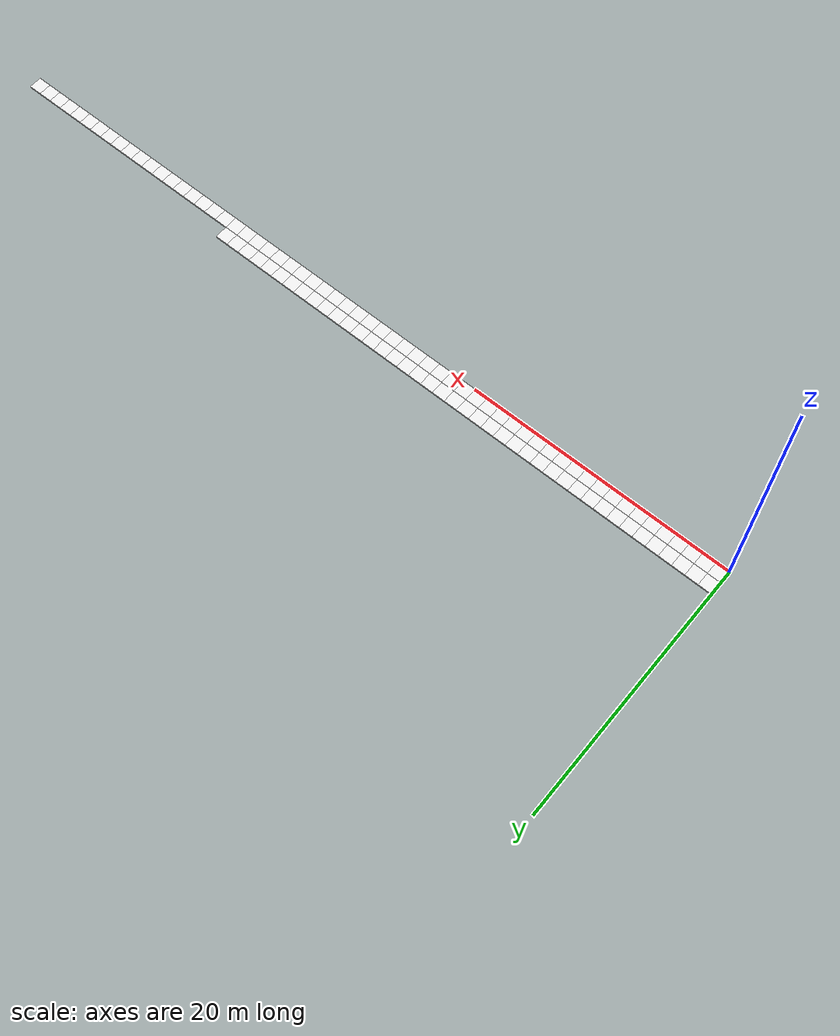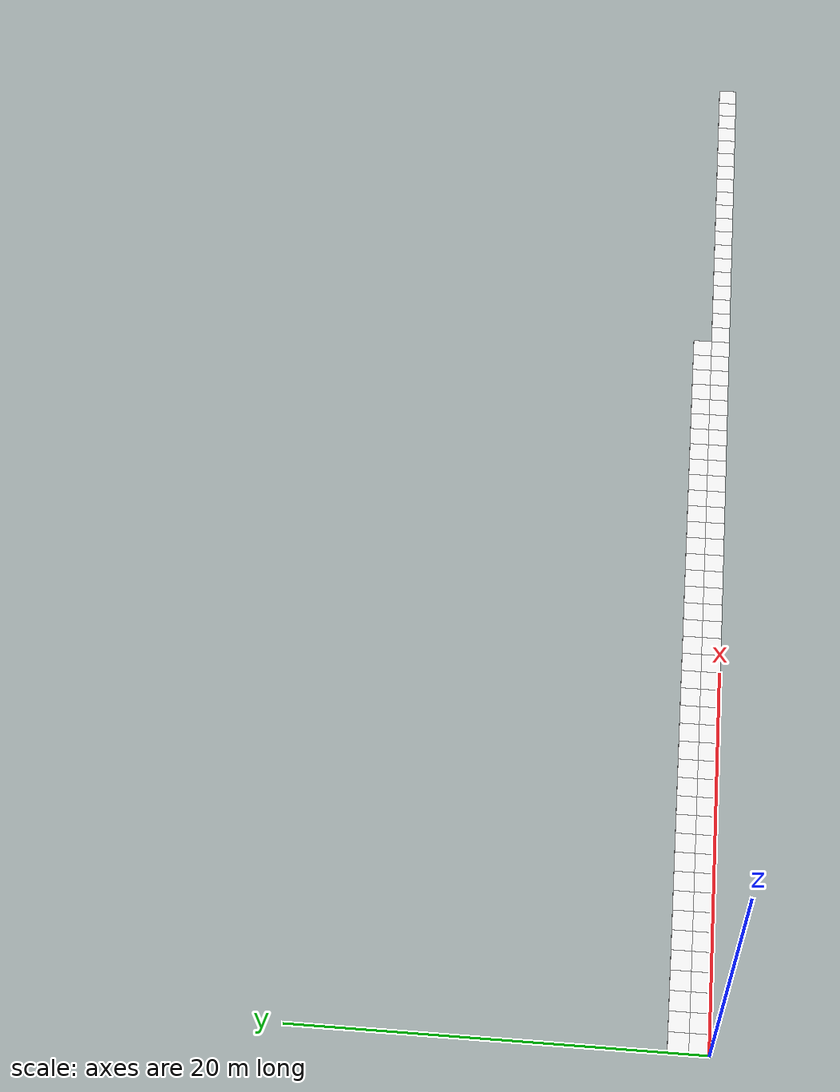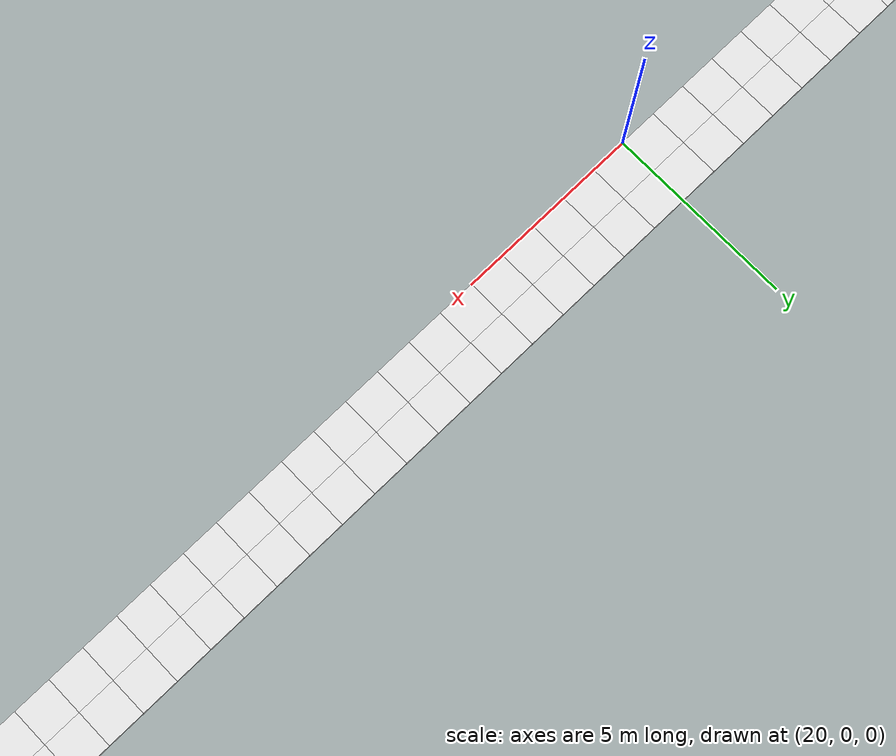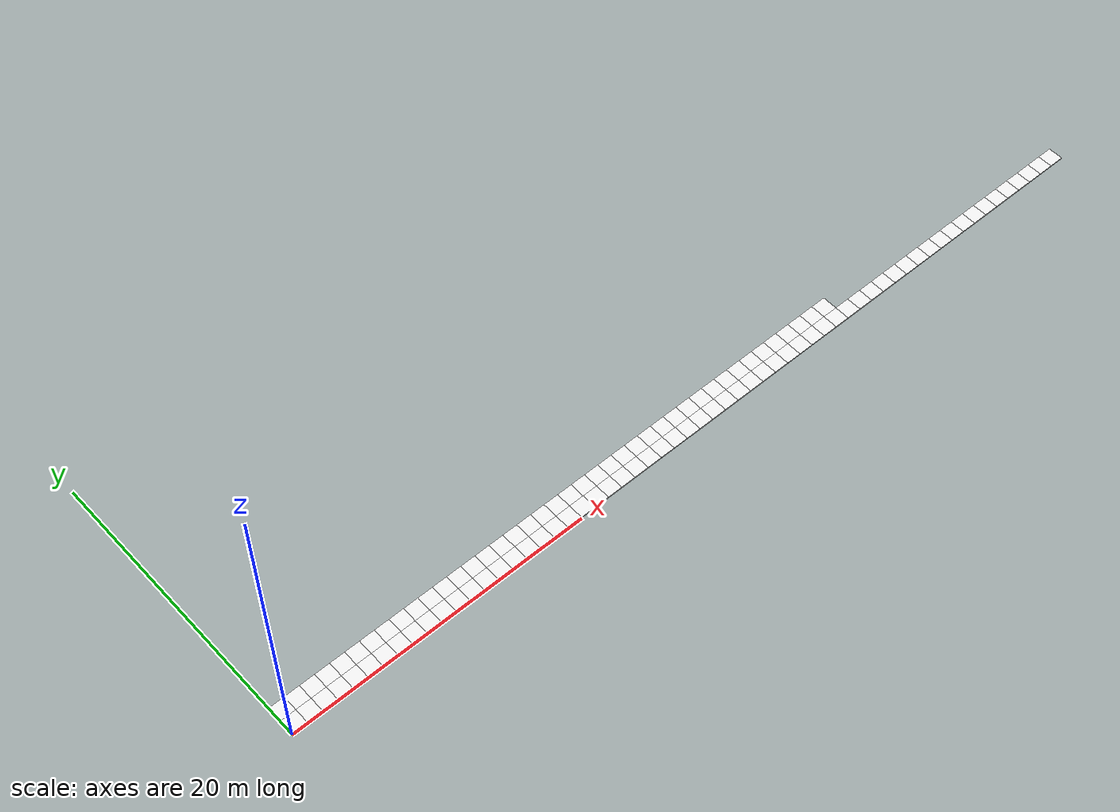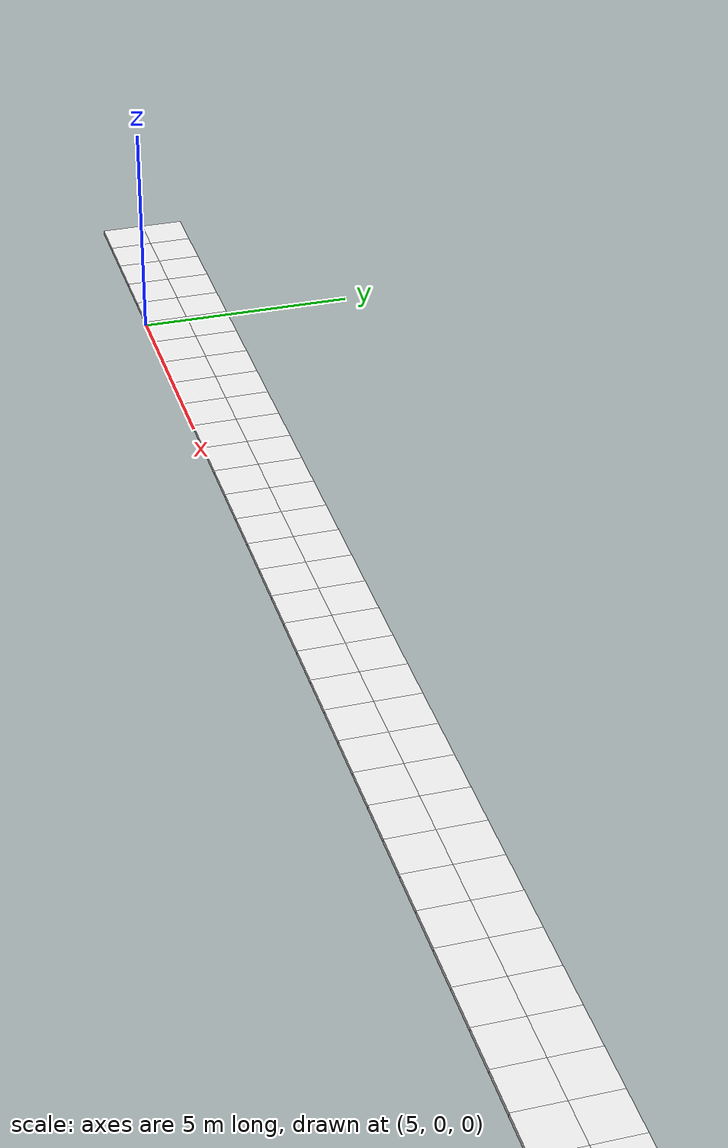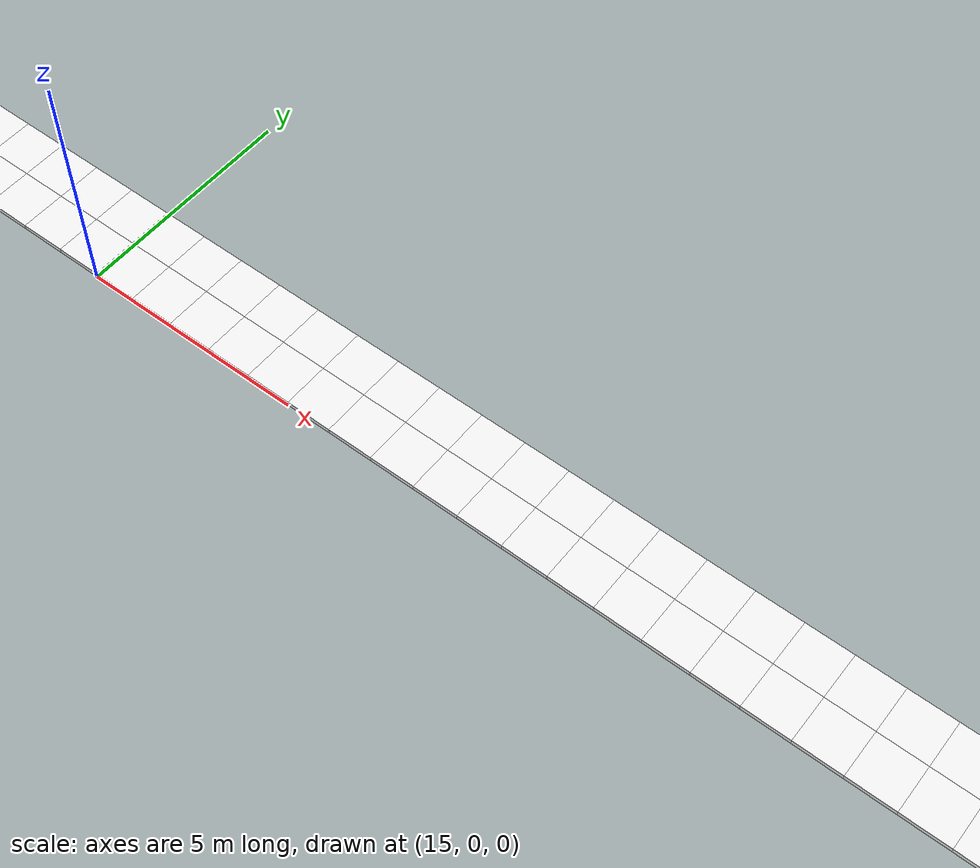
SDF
<sdf version="1.6">
 <world name="grid_world">
  <model name="cell_0_0">
   <static>true</static>
   <link name="link">
    <collision name="collision"><geometry><box><size>1 1 0.1</size></box></geometry></collision>
    <visual name="visual">
     <geometry><box><size>1 1 0.1</size></box></geometry>
     <material>
      <script><uri>file://media/materials/scripts/gazebo.material</uri><name>Gazebo/White</name></script>
     </material>
    </visual>
    <pose>0.5 0.5 0.05 0 0 0</pose>
   </link>
  </model>
  <model name="cell_1_0">
   <static>true</static>
   <link name="link">
    <collision name="collision"><geometry><box><size>1 1 0.1</size></box></geometry></collision>
    <visual name="visual">
     <geometry><box><size>1 1 0.1</size></box></geometry>
     <material>
      <script><uri>file://media/materials/scripts/gazebo.material</uri><name>Gazebo/White</name></script>
     </material>
    </visual>
    <pose>1.5 0.5 0.05 0 0 0</pose>
   </link>
  </model>
  <model name="cell_2_0">
   <static>true</static>
   <link name="link">
    <collision name="collision"><geometry><box><size>1 1 0.1</size></box></geometry></collision>
    <visual name="visual">
     <geometry><box><size>1 1 0.1</size></box></geometry>
     <material>
      <script><uri>file://media/materials/scripts/gazebo.material</uri><name>Gazebo/White</name></script>
     </material>
    </visual>
    <pose>2.5 0.5 0.05 0 0 0</pose>
   </link>
  </model>
  <model name="cell_3_0">
   <static>true</static>
   <link name="link">
    <collision name="collision"><geometry><box><size>1 1 0.1</size></box></geometry></collision>
    <visual name="visual">
     <geometry><box><size>1 1 0.1</size></box></geometry>
     <material>
      <script><uri>file://media/materials/scripts/gazebo.material</uri><name>Gazebo/White</name></script>
     </material>
    </visual>
    <pose>3.5 0.5 0.05 0 0 0</pose>
   </link>
  </model>
  <model name="cell_4_0">
   <static>true</static>
   <link name="link">
    <collision name="collision"><geometry><box><size>1 1 0.1</size></box></geometry></collision>
    <visual name="visual">
     <geometry><box><size>1 1 0.1</size></box></geometry>
     <material>
      <script><uri>file://media/materials/scripts/gazebo.material</uri><name>Gazebo/White</name></script>
     </material>
    </visual>
    <pose>4.5 0.5 0.05 0 0 0</pose>
   </link>
  </model>
  <model name="cell_5_0">
   <static>true</static>
   <link name="link">
    <collision name="collision"><geometry><box><size>1 1 0.1</size></box></geometry></collision>
    <visual name="visual">
     <geometry><box><size>1 1 0.1</size></box></geometry>
     <material>
      <script><uri>file://media/materials/scripts/gazebo.material</uri><name>Gazebo/White</name></script>
     </material>
    </visual>
    <pose>5.5 0.5 0.05 0 0 0</pose>
   </link>
  </model>
  <model name="cell_6_0">
   <static>true</static>
   <link name="link">
    <collision name="collision"><geometry><box><size>1 1 0.1</size></box></geometry></collision>
    <visual name="visual">
     <geometry><box><size>1 1 0.1</size></box></geometry>
     <material>
      <script><uri>file://media/materials/scripts/gazebo.material</uri><name>Gazebo/White</name></script>
     </material>
    </visual>
    <pose>6.5 0.5 0.05 0 0 0</pose>
   </link>
  </model>
  <model name="cell_7_0">
   <static>true</static>
   <link name="link">
    <collision name="collision"><geometry><box><size>1 1 0.1</size></box></geometry></collision>
    <visual name="visual">
     <geometry><box><size>1 1 0.1</size></box></geometry>
     <material>
      <script><uri>file://media/materials/scripts/gazebo.material</uri><name>Gazebo/White</name></script>
     </material>
    </visual>
    <pose>7.5 0.5 0.05 0 0 0</pose>
   </link>
  </model>
  <model name="cell_8_0">
   <static>true</static>
   <link name="link">
    <collision name="collision"><geometry><box><size>1 1 0.1</size></box></geometry></collision>
    <visual name="visual">
     <geometry><box><size>1 1 0.1</size></box></geometry>
     <material>
      <script><uri>file://media/materials/scripts/gazebo.material</uri><name>Gazebo/White</name></script>
     </material>
    </visual>
    <pose>8.5 0.5 0.05 0 0 0</pose>
   </link>
  </model>
  <model name="cell_9_0">
   <static>true</static>
   <link name="link">
    <collision name="collision"><geometry><box><size>1 1 0.1</size></box></geometry></collision>
    <visual name="visual">
     <geometry><box><size>1 1 0.1</size></box></geometry>
     <material>
      <script><uri>file://media/materials/scripts/gazebo.material</uri><name>Gazebo/White</name></script>
     </material>
    </visual>
    <pose>9.5 0.5 0.05 0 0 0</pose>
   </link>
  </model>
  <model name="cell_10_0">
   <static>true</static>
   <link name="link">
    <collision name="collision"><geometry><box><size>1 1 0.1</size></box></geometry></collision>
    <visual name="visual">
     <geometry><box><size>1 1 0.1</size></box></geometry>
     <material>
      <script><uri>file://media/materials/scripts/gazebo.material</uri><name>Gazebo/White</name></script>
     </material>
    </visual>
    <pose>10.5 0.5 0.05 0 0 0</pose>
   </link>
  </model>
  <model name="cell_11_0">
   <static>true</static>
   <link name="link">
    <collision name="collision"><geometry><box><size>1 1 0.1</size></box></geometry></collision>
    <visual name="visual">
     <geometry><box><size>1 1 0.1</size></box></geometry>
     <material>
      <script><uri>file://media/materials/scripts/gazebo.material</uri><name>Gazebo/White</name></script>
     </material>
    </visual>
    <pose>11.5 0.5 0.05 0 0 0</pose>
   </link>
  </model>
  <model name="cell_12_0">
   <static>true</static>
   <link name="link">
    <collision name="collision"><geometry><box><size>1 1 0.1</size></box></geometry></collision>
    <visual name="visual">
     <geometry><box><size>1 1 0.1</size></box></geometry>
     <material>
      <script><uri>file://media/materials/scripts/gazebo.material</uri><name>Gazebo/White</name></script>
     </material>
    </visual>
    <pose>12.5 0.5 0.05 0 0 0</pose>
   </link>
  </model>
  <model name="cell_13_0">
   <static>true</static>
   <link name="link">
    <collision name="collision"><geometry><box><size>1 1 0.1</size></box></geometry></collision>
    <visual name="visual">
     <geometry><box><size>1 1 0.1</size></box></geometry>
     <material>
      <script><uri>file://media/materials/scripts/gazebo.material</uri><name>Gazebo/White</name></script>
     </material>
    </visual>
    <pose>13.5 0.5 0.05 0 0 0</pose>
   </link>
  </model>
  <model name="cell_14_0">
   <static>true</static>
   <link name="link">
    <collision name="collision"><geometry><box><size>1 1 0.1</size></box></geometry></collision>
    <visual name="visual">
     <geometry><box><size>1 1 0.1</size></box></geometry>
     <material>
      <script><uri>file://media/materials/scripts/gazebo.material</uri><name>Gazebo/White</name></script>
     </material>
    </visual>
    <pose>14.5 0.5 0.05 0 0 0</pose>
   </link>
  </model>
  <model name="cell_15_0">
   <static>true</static>
   <link name="link">
    <collision name="collision"><geometry><box><size>1 1 0.1</size></box></geometry></collision>
    <visual name="visual">
     <geometry><box><size>1 1 0.1</size></box></geometry>
     <material>
      <script><uri>file://media/materials/scripts/gazebo.material</uri><name>Gazebo/White</name></script>
     </material>
    </visual>
    <pose>15.5 0.5 0.05 0 0 0</pose>
   </link>
  </model>
  <model name="cell_16_0">
   <static>true</static>
   <link name="link">
    <collision name="collision"><geometry><box><size>1 1 0.1</size></box></geometry></collision>
    <visual name="visual">
     <geometry><box><size>1 1 0.1</size></box></geometry>
     <material>
      <script><uri>file://media/materials/scripts/gazebo.material</uri><name>Gazebo/White</name></script>
     </material>
    </visual>
    <pose>16.5 0.5 0.05 0 0 0</pose>
   </link>
  </model>
  <model name="cell_17_0">
   <static>true</static>
   <link name="link">
    <collision name="collision"><geometry><box><size>1 1 0.1</size></box></geometry></collision>
    <visual name="visual">
     <geometry><box><size>1 1 0.1</size></box></geometry>
     <material>
      <script><uri>file://media/materials/scripts/gazebo.material</uri><name>Gazebo/White</name></script>
     </material>
    </visual>
    <pose>17.5 0.5 0.05 0 0 0</pose>
   </link>
  </model>
  <model name="cell_18_0">
   <static>true</static>
   <link name="link">
    <collision name="collision"><geometry><box><size>1 1 0.1</size></box></geometry></collision>
    <visual name="visual">
     <geometry><box><size>1 1 0.1</size></box></geometry>
     <material>
      <script><uri>file://media/materials/scripts/gazebo.material</uri><name>Gazebo/White</name></script>
     </material>
    </visual>
    <pose>18.5 0.5 0.05 0 0 0</pose>
   </link>
  </model>
  <model name="cell_19_0">
   <static>true</static>
   <link name="link">
    <collision name="collision"><geometry><box><size>1 1 0.1</size></box></geometry></collision>
    <visual name="visual">
     <geometry><box><size>1 1 0.1</size></box></geometry>
     <material>
      <script><uri>file://media/materials/scripts/gazebo.material</uri><name>Gazebo/White</name></script>
     </material>
    </visual>
    <pose>19.5 0.5 0.05 0 0 0</pose>
   </link>
  </model>
  <model name="cell_20_0">
   <static>true</static>
   <link name="link">
    <collision name="collision"><geometry><box><size>1 1 0.1</size></box></geometry></collision>
    <visual name="visual">
     <geometry><box><size>1 1 0.1</size></box></geometry>
     <material>
      <script><uri>file://media/materials/scripts/gazebo.material</uri><name>Gazebo/White</name></script>
     </material>
    </visual>
    <pose>20.5 0.5 0.05 0 0 0</pose>
   </link>
  </model>
  <model name="cell_21_0">
   <static>true</static>
   <link name="link">
    <collision name="collision"><geometry><box><size>1 1 0.1</size></box></geometry></collision>
    <visual name="visual">
     <geometry><box><size>1 1 0.1</size></box></geometry>
     <material>
      <script><uri>file://media/materials/scripts/gazebo.material</uri><name>Gazebo/White</name></script>
     </material>
    </visual>
    <pose>21.5 0.5 0.05 0 0 0</pose>
   </link>
  </model>
  <model name="cell_22_0">
   <static>true</static>
   <link name="link">
    <collision name="collision"><geometry><box><size>1 1 0.1</size></box></geometry></collision>
    <visual name="visual">
     <geometry><box><size>1 1 0.1</size></box></geometry>
     <material>
      <script><uri>file://media/materials/scripts/gazebo.material</uri><name>Gazebo/White</name></script>
     </material>
    </visual>
    <pose>22.5 0.5 0.05 0 0 0</pose>
   </link>
  </model>
  <model name="cell_23_0">
   <static>true</static>
   <link name="link">
    <collision name="collision"><geometry><box><size>1 1 0.1</size></box></geometry></collision>
    <visual name="visual">
     <geometry><box><size>1 1 0.1</size></box></geometry>
     <material>
      <script><uri>file://media/materials/scripts/gazebo.material</uri><name>Gazebo/White</name></script>
     </material>
    </visual>
    <pose>23.5 0.5 0.05 0 0 0</pose>
   </link>
  </model>
  <model name="cell_24_0">
   <static>true</static>
   <link name="link">
    <collision name="collision"><geometry><box><size>1 1 0.1</size></box></geometry></collision>
    <visual name="visual">
     <geometry><box><size>1 1 0.1</size></box></geometry>
     <material>
      <script><uri>file://media/materials/scripts/gazebo.material</uri><name>Gazebo/White</name></script>
     </material>
    </visual>
    <pose>24.5 0.5 0.05 0 0 0</pose>
   </link>
  </model>
  <model name="cell_25_0">
   <static>true</static>
   <link name="link">
    <collision name="collision"><geometry><box><size>1 1 0.1</size></box></geometry></collision>
    <visual name="visual">
     <geometry><box><size>1 1 0.1</size></box></geometry>
     <material>
      <script><uri>file://media/materials/scripts/gazebo.material</uri><name>Gazebo/White</name></script>
     </material>
    </visual>
    <pose>25.5 0.5 0.05 0 0 0</pose>
   </link>
  </model>
  <model name="cell_26_0">
   <static>true</static>
   <link name="link">
    <collision name="collision"><geometry><box><size>1 1 0.1</size></box></geometry></collision>
    <visual name="visual">
     <geometry><box><size>1 1 0.1</size></box></geometry>
     <material>
      <script><uri>file://media/materials/scripts/gazebo.material</uri><name>Gazebo/White</name></script>
     </material>
    </visual>
    <pose>26.5 0.5 0.05 0 0 0</pose>
   </link>
  </model>
  <model name="cell_27_0">
   <static>true</static>
   <link name="link">
    <collision name="collision"><geometry><box><size>1 1 0.1</size></box></geometry></collision>
    <visual name="visual">
     <geometry><box><size>1 1 0.1</size></box></geometry>
     <material>
      <script><uri>file://media/materials/scripts/gazebo.material</uri><name>Gazebo/White</name></script>
     </material>
    </visual>
    <pose>27.5 0.5 0.05 0 0 0</pose>
   </link>
  </model>
  <model name="cell_28_0">
   <static>true</static>
   <link name="link">
    <collision name="collision"><geometry><box><size>1 1 0.1</size></box></geometry></collision>
    <visual name="visual">
     <geometry><box><size>1 1 0.1</size></box></geometry>
     <material>
      <script><uri>file://media/materials/scripts/gazebo.material</uri><name>Gazebo/White</name></script>
     </material>
    </visual>
    <pose>28.5 0.5 0.05 0 0 0</pose>
   </link>
  </model>
  <model name="cell_29_0">
   <static>true</static>
   <link name="link">
    <collision name="collision"><geometry><box><size>1 1 0.1</size></box></geometry></collision>
    <visual name="visual">
     <geometry><box><size>1 1 0.1</size></box></geometry>
     <material>
      <script><uri>file://media/materials/scripts/gazebo.material</uri><name>Gazebo/White</name></script>
     </material>
    </visual>
    <pose>29.5 0.5 0.05 0 0 0</pose>
   </link>
  </model>
  <model name="cell_30_0">
   <static>true</static>
   <link name="link">
    <collision name="collision"><geometry><box><size>1 1 0.1</size></box></geometry></collision>
    <visual name="visual">
     <geometry><box><size>1 1 0.1</size></box></geometry>
     <material>
      <script><uri>file://media/materials/scripts/gazebo.material</uri><name>Gazebo/White</name></script>
     </material>
    </visual>
    <pose>30.5 0.5 0.05 0 0 0</pose>
   </link>
  </model>
  <model name="cell_31_0">
   <static>true</static>
   <link name="link">
    <collision name="collision"><geometry><box><size>1 1 0.1</size></box></geometry></collision>
    <visual name="visual">
     <geometry><box><size>1 1 0.1</size></box></geometry>
     <material>
      <script><uri>file://media/materials/scripts/gazebo.material</uri><name>Gazebo/White</name></script>
     </material>
    </visual>
    <pose>31.5 0.5 0.05 0 0 0</pose>
   </link>
  </model>
  <model name="cell_32_0">
   <static>true</static>
   <link name="link">
    <collision name="collision"><geometry><box><size>1 1 0.1</size></box></geometry></collision>
    <visual name="visual">
     <geometry><box><size>1 1 0.1</size></box></geometry>
     <material>
      <script><uri>file://media/materials/scripts/gazebo.material</uri><name>Gazebo/White</name></script>
     </material>
    </visual>
    <pose>32.5 0.5 0.05 0 0 0</pose>
   </link>
  </model>
  <model name="cell_33_0">
   <static>true</static>
   <link name="link">
    <collision name="collision"><geometry><box><size>1 1 0.1</size></box></geometry></collision>
    <visual name="visual">
     <geometry><box><size>1 1 0.1</size></box></geometry>
     <material>
      <script><uri>file://media/materials/scripts/gazebo.material</uri><name>Gazebo/White</name></script>
     </material>
    </visual>
    <pose>33.5 0.5 0.05 0 0 0</pose>
   </link>
  </model>
  <model name="cell_34_0">
   <static>true</static>
   <link name="link">
    <collision name="collision"><geometry><box><size>1 1 0.1</size></box></geometry></collision>
    <visual name="visual">
     <geometry><box><size>1 1 0.1</size></box></geometry>
     <material>
      <script><uri>file://media/materials/scripts/gazebo.material</uri><name>Gazebo/White</name></script>
     </material>
    </visual>
    <pose>34.5 0.5 0.05 0 0 0</pose>
   </link>
  </model>
  <model name="cell_35_0">
   <static>true</static>
   <link name="link">
    <collision name="collision"><geometry><box><size>1 1 0.1</size></box></geometry></collision>
    <visual name="visual">
     <geometry><box><size>1 1 0.1</size></box></geometry>
     <material>
      <script><uri>file://media/materials/scripts/gazebo.material</uri><name>Gazebo/White</name></script>
     </material>
    </visual>
    <pose>35.5 0.5 0.05 0 0 0</pose>
   </link>
  </model>
  <model name="cell_36_0">
   <static>true</static>
   <link name="link">
    <collision name="collision"><geometry><box><size>1 1 0.1</size></box></geometry></collision>
    <visual name="visual">
     <geometry><box><size>1 1 0.1</size></box></geometry>
     <material>
      <script><uri>file://media/materials/scripts/gazebo.material</uri><name>Gazebo/White</name></script>
     </material>
    </visual>
    <pose>36.5 0.5 0.05 0 0 0</pose>
   </link>
  </model>
  <model name="cell_37_0">
   <static>true</static>
   <link name="link">
    <collision name="collision"><geometry><box><size>1 1 0.1</size></box></geometry></collision>
    <visual name="visual">
     <geometry><box><size>1 1 0.1</size></box></geometry>
     <material>
      <script><uri>file://media/materials/scripts/gazebo.material</uri><name>Gazebo/White</name></script>
     </material>
    </visual>
    <pose>37.5 0.5 0.05 0 0 0</pose>
   </link>
  </model>
  <model name="cell_38_0">
   <static>true</static>
   <link name="link">
    <collision name="collision"><geometry><box><size>1 1 0.1</size></box></geometry></collision>
    <visual name="visual">
     <geometry><box><size>1 1 0.1</size></box></geometry>
     <material>
      <script><uri>file://media/materials/scripts/gazebo.material</uri><name>Gazebo/White</name></script>
     </material>
    </visual>
    <pose>38.5 0.5 0.05 0 0 0</pose>
   </link>
  </model>
  <model name="cell_39_0">
   <static>true</static>
   <link name="link">
    <collision name="collision"><geometry><box><size>1 1 0.1</size></box></geometry></collision>
    <visual name="visual">
     <geometry><box><size>1 1 0.1</size></box></geometry>
     <material>
      <script><uri>file://media/materials/scripts/gazebo.material</uri><name>Gazebo/White</name></script>
     </material>
    </visual>
    <pose>39.5 0.5 0.05 0 0 0</pose>
   </link>
  </model>
  <model name="cell_40_0">
   <static>true</static>
   <link name="link">
    <collision name="collision"><geometry><box><size>1 1 0.1</size></box></geometry></collision>
    <visual name="visual">
     <geometry><box><size>1 1 0.1</size></box></geometry>
     <material>
      <script><uri>file://media/materials/scripts/gazebo.material</uri><name>Gazebo/White</name></script>
     </material>
    </visual>
    <pose>40.5 0.5 0.05 0 0 0</pose>
   </link>
  </model>
  <model name="cell_41_0">
   <static>true</static>
   <link name="link">
    <collision name="collision"><geometry><box><size>1 1 0.1</size></box></geometry></collision>
    <visual name="visual">
     <geometry><box><size>1 1 0.1</size></box></geometry>
     <material>
      <script><uri>file://media/materials/scripts/gazebo.material</uri><name>Gazebo/White</name></script>
     </material>
    </visual>
    <pose>41.5 0.5 0.05 0 0 0</pose>
   </link>
  </model>
  <model name="cell_42_0">
   <static>true</static>
   <link name="link">
    <collision name="collision"><geometry><box><size>1 1 0.1</size></box></geometry></collision>
    <visual name="visual">
     <geometry><box><size>1 1 0.1</size></box></geometry>
     <material>
      <script><uri>file://media/materials/scripts/gazebo.material</uri><name>Gazebo/White</name></script>
     </material>
    </visual>
    <pose>42.5 0.5 0.05 0 0 0</pose>
   </link>
  </model>
  <model name="cell_43_0">
   <static>true</static>
   <link name="link">
    <collision name="collision"><geometry><box><size>1 1 0.1</size></box></geometry></collision>
    <visual name="visual">
     <geometry><box><size>1 1 0.1</size></box></geometry>
     <material>
      <script><uri>file://media/materials/scripts/gazebo.material</uri><name>Gazebo/White</name></script>
     </material>
    </visual>
    <pose>43.5 0.5 0.05 0 0 0</pose>
   </link>
  </model>
  <model name="cell_44_0">
   <static>true</static>
   <link name="link">
    <collision name="collision"><geometry><box><size>1 1 0.1</size></box></geometry></collision>
    <visual name="visual">
     <geometry><box><size>1 1 0.1</size></box></geometry>
     <material>
      <script><uri>file://media/materials/scripts/gazebo.material</uri><name>Gazebo/White</name></script>
     </material>
    </visual>
    <pose>44.5 0.5 0.05 0 0 0</pose>
   </link>
  </model>
  <model name="cell_45_0">
   <static>true</static>
   <link name="link">
    <collision name="collision"><geometry><box><size>1 1 0.1</size></box></geometry></collision>
    <visual name="visual">
     <geometry><box><size>1 1 0.1</size></box></geometry>
     <material>
      <script><uri>file://media/materials/scripts/gazebo.material</uri><name>Gazebo/White</name></script>
     </material>
    </visual>
    <pose>45.5 0.5 0.05 0 0 0</pose>
   </link>
  </model>
  <model name="cell_46_0">
   <static>true</static>
   <link name="link">
    <collision name="collision"><geometry><box><size>1 1 0.1</size></box></geometry></collision>
    <visual name="visual">
     <geometry><box><size>1 1 0.1</size></box></geometry>
     <material>
      <script><uri>file://media/materials/scripts/gazebo.material</uri><name>Gazebo/White</name></script>
     </material>
    </visual>
    <pose>46.5 0.5 0.05 0 0 0</pose>
   </link>
  </model>
  <model name="cell_47_0">
   <static>true</static>
   <link name="link">
    <collision name="collision"><geometry><box><size>1 1 0.1</size></box></geometry></collision>
    <visual name="visual">
     <geometry><box><size>1 1 0.1</size></box></geometry>
     <material>
      <script><uri>file://media/materials/scripts/gazebo.material</uri><name>Gazebo/White</name></script>
     </material>
    </visual>
    <pose>47.5 0.5 0.05 0 0 0</pose>
   </link>
  </model>
  <model name="cell_48_0">
   <static>true</static>
   <link name="link">
    <collision name="collision"><geometry><box><size>1 1 0.1</size></box></geometry></collision>
    <visual name="visual">
     <geometry><box><size>1 1 0.1</size></box></geometry>
     <material>
      <script><uri>file://media/materials/scripts/gazebo.material</uri><name>Gazebo/White</name></script>
     </material>
    </visual>
    <pose>48.5 0.5 0.05 0 0 0</pose>
   </link>
  </model>
  <model name="cell_49_0">
   <static>true</static>
   <link name="link">
    <collision name="collision"><geometry><box><size>1 1 0.1</size></box></geometry></collision>
    <visual name="visual">
     <geometry><box><size>1 1 0.1</size></box></geometry>
     <material>
      <script><uri>file://media/materials/scripts/gazebo.material</uri><name>Gazebo/White</name></script>
     </material>
    </visual>
    <pose>49.5 0.5 0.05 0 0 0</pose>
   </link>
  </model>
  <model name="cell_50_0">
   <static>true</static>
   <link name="link">
    <collision name="collision"><geometry><box><size>1 1 0.1</size></box></geometry></collision>
    <visual name="visual">
     <geometry><box><size>1 1 0.1</size></box></geometry>
     <material>
      <script><uri>file://media/materials/scripts/gazebo.material</uri><name>Gazebo/White</name></script>
     </material>
    </visual>
    <pose>50.5 0.5 0.05 0 0 0</pose>
   </link>
  </model>
  <model name="cell_51_0">
   <static>true</static>
   <link name="link">
    <collision name="collision"><geometry><box><size>1 1 0.1</size></box></geometry></collision>
    <visual name="visual">
     <geometry><box><size>1 1 0.1</size></box></geometry>
     <material>
      <script><uri>file://media/materials/scripts/gazebo.material</uri><name>Gazebo/White</name></script>
     </material>
    </visual>
    <pose>51.5 0.5 0.05 0 0 0</pose>
   </link>
  </model>
  <model name="cell_52_0">
   <static>true</static>
   <link name="link">
    <collision name="collision"><geometry><box><size>1 1 0.1</size></box></geometry></collision>
    <visual name="visual">
     <geometry><box><size>1 1 0.1</size></box></geometry>
     <material>
      <script><uri>file://media/materials/scripts/gazebo.material</uri><name>Gazebo/White</name></script>
     </material>
    </visual>
    <pose>52.5 0.5 0.05 0 0 0</pose>
   </link>
  </model>
  <model name="cell_53_0">
   <static>true</static>
   <link name="link">
    <collision name="collision"><geometry><box><size>1 1 0.1</size></box></geometry></collision>
    <visual name="visual">
     <geometry><box><size>1 1 0.1</size></box></geometry>
     <material>
      <script><uri>file://media/materials/scripts/gazebo.material</uri><name>Gazebo/White</name></script>
     </material>
    </visual>
    <pose>53.5 0.5 0.05 0 0 0</pose>
   </link>
  </model>
  <model name="cell_54_0">
   <static>true</static>
   <link name="link">
    <collision name="collision"><geometry><box><size>1 1 0.1</size></box></geometry></collision>
    <visual name="visual">
     <geometry><box><size>1 1 0.1</size></box></geometry>
     <material>
      <script><uri>file://media/materials/scripts/gazebo.material</uri><name>Gazebo/White</name></script>
     </material>
    </visual>
    <pose>54.5 0.5 0.05 0 0 0</pose>
   </link>
  </model>
  <model name="cell_55_0">
   <static>true</static>
   <link name="link">
    <collision name="collision"><geometry><box><size>1 1 0.1</size></box></geometry></collision>
    <visual name="visual">
     <geometry><box><size>1 1 0.1</size></box></geometry>
     <material>
      <script><uri>file://media/materials/scripts/gazebo.material</uri><name>Gazebo/White</name></script>
     </material>
    </visual>
    <pose>55.5 0.5 0.05 0 0 0</pose>
   </link>
  </model>
  <model name="cell_56_0">
   <static>true</static>
   <link name="link">
    <collision name="collision"><geometry><box><size>1 1 0.1</size></box></geometry></collision>
    <visual name="visual">
     <geometry><box><size>1 1 0.1</size></box></geometry>
     <material>
      <script><uri>file://media/materials/scripts/gazebo.material</uri><name>Gazebo/White</name></script>
     </material>
    </visual>
    <pose>56.5 0.5 0.05 0 0 0</pose>
   </link>
  </model>
  <model name="cell_57_0">
   <static>true</static>
   <link name="link">
    <collision name="collision"><geometry><box><size>1 1 0.1</size></box></geometry></collision>
    <visual name="visual">
     <geometry><box><size>1 1 0.1</size></box></geometry>
     <material>
      <script><uri>file://media/materials/scripts/gazebo.material</uri><name>Gazebo/White</name></script>
     </material>
    </visual>
    <pose>57.5 0.5 0.05 0 0 0</pose>
   </link>
  </model>
  <model name="cell_58_0">
   <static>true</static>
   <link name="link">
    <collision name="collision"><geometry><box><size>1 1 0.1</size></box></geometry></collision>
    <visual name="visual">
     <geometry><box><size>1 1 0.1</size></box></geometry>
     <material>
      <script><uri>file://media/materials/scripts/gazebo.material</uri><name>Gazebo/White</name></script>
     </material>
    </visual>
    <pose>58.5 0.5 0.05 0 0 0</pose>
   </link>
  </model>
  <model name="cell_59_0">
   <static>true</static>
   <link name="link">
    <collision name="collision"><geometry><box><size>1 1 0.1</size></box></geometry></collision>
    <visual name="visual">
     <geometry><box><size>1 1 0.1</size></box></geometry>
     <material>
      <script><uri>file://media/materials/scripts/gazebo.material</uri><name>Gazebo/White</name></script>
     </material>
    </visual>
    <pose>59.5 0.5 0.05 0 0 0</pose>
   </link>
  </model>
  <model name="cell_0_1">
   <static>true</static>
   <link name="link">
    <collision name="collision"><geometry><box><size>1 1 0.1</size></box></geometry></collision>
    <visual name="visual">
     <geometry><box><size>1 1 0.1</size></box></geometry>
     <material>
      <script><uri>file://media/materials/scripts/gazebo.material</uri><name>Gazebo/White</name></script>
     </material>
    </visual>
    <pose>0.5 1.5 0.05 0 0 0</pose>
   </link>
  </model>
  <model name="cell_1_1">
   <static>true</static>
   <link name="link">
    <collision name="collision"><geometry><box><size>1 1 0.1</size></box></geometry></collision>
    <visual name="visual">
     <geometry><box><size>1 1 0.1</size></box></geometry>
     <material>
      <script><uri>file://media/materials/scripts/gazebo.material</uri><name>Gazebo/White</name></script>
     </material>
    </visual>
    <pose>1.5 1.5 0.05 0 0 0</pose>
   </link>
  </model>
  <model name="cell_2_1">
   <static>true</static>
   <link name="link">
    <collision name="collision"><geometry><box><size>1 1 0.1</size></box></geometry></collision>
    <visual name="visual">
     <geometry><box><size>1 1 0.1</size></box></geometry>
     <material>
      <script><uri>file://media/materials/scripts/gazebo.material</uri><name>Gazebo/White</name></script>
     </material>
    </visual>
    <pose>2.5 1.5 0.05 0 0 0</pose>
   </link>
  </model>
  <model name="cell_3_1">
   <static>true</static>
   <link name="link">
    <collision name="collision"><geometry><box><size>1 1 0.1</size></box></geometry></collision>
    <visual name="visual">
     <geometry><box><size>1 1 0.1</size></box></geometry>
     <material>
      <script><uri>file://media/materials/scripts/gazebo.material</uri><name>Gazebo/White</name></script>
     </material>
    </visual>
    <pose>3.5 1.5 0.05 0 0 0</pose>
   </link>
  </model>
  <model name="cell_4_1">
   <static>true</static>
   <link name="link">
    <collision name="collision"><geometry><box><size>1 1 0.1</size></box></geometry></collision>
    <visual name="visual">
     <geometry><box><size>1 1 0.1</size></box></geometry>
     <material>
      <script><uri>file://media/materials/scripts/gazebo.material</uri><name>Gazebo/White</name></script>
     </material>
    </visual>
    <pose>4.5 1.5 0.05 0 0 0</pose>
   </link>
  </model>
  <model name="cell_5_1">
   <static>true</static>
   <link name="link">
    <collision name="collision"><geometry><box><size>1 1 0.1</size></box></geometry></collision>
    <visual name="visual">
     <geometry><box><size>1 1 0.1</size></box></geometry>
     <material>
      <script><uri>file://media/materials/scripts/gazebo.material</uri><name>Gazebo/White</name></script>
     </material>
    </visual>
    <pose>5.5 1.5 0.05 0 0 0</pose>
   </link>
  </model>
  <model name="cell_6_1">
   <static>true</static>
   <link name="link">
    <collision name="collision"><geometry><box><size>1 1 0.1</size></box></geometry></collision>
    <visual name="visual">
     <geometry><box><size>1 1 0.1</size></box></geometry>
     <material>
      <script><uri>file://media/materials/scripts/gazebo.material</uri><name>Gazebo/White</name></script>
     </material>
    </visual>
    <pose>6.5 1.5 0.05 0 0 0</pose>
   </link>
  </model>
  <model name="cell_7_1">
   <static>true</static>
   <link name="link">
    <collision name="collision"><geometry><box><size>1 1 0.1</size></box></geometry></collision>
    <visual name="visual">
     <geometry><box><size>1 1 0.1</size></box></geometry>
     <material>
      <script><uri>file://media/materials/scripts/gazebo.material</uri><name>Gazebo/White</name></script>
     </material>
    </visual>
    <pose>7.5 1.5 0.05 0 0 0</pose>
   </link>
  </model>
  <model name="cell_8_1">
   <static>true</static>
   <link name="link">
    <collision name="collision"><geometry><box><size>1 1 0.1</size></box></geometry></collision>
    <visual name="visual">
     <geometry><box><size>1 1 0.1</size></box></geometry>
     <material>
      <script><uri>file://media/materials/scripts/gazebo.material</uri><name>Gazebo/White</name></script>
     </material>
    </visual>
    <pose>8.5 1.5 0.05 0 0 0</pose>
   </link>
  </model>
  <model name="cell_9_1">
   <static>true</static>
   <link name="link">
    <collision name="collision"><geometry><box><size>1 1 0.1</size></box></geometry></collision>
    <visual name="visual">
     <geometry><box><size>1 1 0.1</size></box></geometry>
     <material>
      <script><uri>file://media/materials/scripts/gazebo.material</uri><name>Gazebo/White</name></script>
     </material>
    </visual>
    <pose>9.5 1.5 0.05 0 0 0</pose>
   </link>
  </model>
  <model name="cell_10_1">
   <static>true</static>
   <link name="link">
    <collision name="collision"><geometry><box><size>1 1 0.1</size></box></geometry></collision>
    <visual name="visual">
     <geometry><box><size>1 1 0.1</size></box></geometry>
     <material>
      <script><uri>file://media/materials/scripts/gazebo.material</uri><name>Gazebo/White</name></script>
     </material>
    </visual>
    <pose>10.5 1.5 0.05 0 0 0</pose>
   </link>
  </model>
  <model name="cell_11_1">
   <static>true</static>
   <link name="link">
    <collision name="collision"><geometry><box><size>1 1 0.1</size></box></geometry></collision>
    <visual name="visual">
     <geometry><box><size>1 1 0.1</size></box></geometry>
     <material>
      <script><uri>file://media/materials/scripts/gazebo.material</uri><name>Gazebo/White</name></script>
     </material>
    </visual>
    <pose>11.5 1.5 0.05 0 0 0</pose>
   </link>
  </model>
  <model name="cell_12_1">
   <static>true</static>
   <link name="link">
    <collision name="collision"><geometry><box><size>1 1 0.1</size></box></geometry></collision>
    <visual name="visual">
     <geometry><box><size>1 1 0.1</size></box></geometry>
     <material>
      <script><uri>file://media/materials/scripts/gazebo.material</uri><name>Gazebo/White</name></script>
     </material>
    </visual>
    <pose>12.5 1.5 0.05 0 0 0</pose>
   </link>
  </model>
  <model name="cell_13_1">
   <static>true</static>
   <link name="link">
    <collision name="collision"><geometry><box><size>1 1 0.1</size></box></geometry></collision>
    <visual name="visual">
     <geometry><box><size>1 1 0.1</size></box></geometry>
     <material>
      <script><uri>file://media/materials/scripts/gazebo.material</uri><name>Gazebo/White</name></script>
     </material>
    </visual>
    <pose>13.5 1.5 0.05 0 0 0</pose>
   </link>
  </model>
  <model name="cell_14_1">
   <static>true</static>
   <link name="link">
    <collision name="collision"><geometry><box><size>1 1 0.1</size></box></geometry></collision>
    <visual name="visual">
     <geometry><box><size>1 1 0.1</size></box></geometry>
     <material>
      <script><uri>file://media/materials/scripts/gazebo.material</uri><name>Gazebo/White</name></script>
     </material>
    </visual>
    <pose>14.5 1.5 0.05 0 0 0</pose>
   </link>
  </model>
  <model name="cell_15_1">
   <static>true</static>
   <link name="link">
    <collision name="collision"><geometry><box><size>1 1 0.1</size></box></geometry></collision>
    <visual name="visual">
     <geometry><box><size>1 1 0.1</size></box></geometry>
     <material>
      <script><uri>file://media/materials/scripts/gazebo.material</uri><name>Gazebo/White</name></script>
     </material>
    </visual>
    <pose>15.5 1.5 0.05 0 0 0</pose>
   </link>
  </model>
  <model name="cell_16_1">
   <static>true</static>
   <link name="link">
    <collision name="collision"><geometry><box><size>1 1 0.1</size></box></geometry></collision>
    <visual name="visual">
     <geometry><box><size>1 1 0.1</size></box></geometry>
     <material>
      <script><uri>file://media/materials/scripts/gazebo.material</uri><name>Gazebo/White</name></script>
     </material>
    </visual>
    <pose>16.5 1.5 0.05 0 0 0</pose>
   </link>
  </model>
  <model name="cell_17_1">
   <static>true</static>
   <link name="link">
    <collision name="collision"><geometry><box><size>1 1 0.1</size></box></geometry></collision>
    <visual name="visual">
     <geometry><box><size>1 1 0.1</size></box></geometry>
     <material>
      <script><uri>file://media/materials/scripts/gazebo.material</uri><name>Gazebo/White</name></script>
     </material>
    </visual>
    <pose>17.5 1.5 0.05 0 0 0</pose>
   </link>
  </model>
  <model name="cell_18_1">
   <static>true</static>
   <link name="link">
    <collision name="collision"><geometry><box><size>1 1 0.1</size></box></geometry></collision>
    <visual name="visual">
     <geometry><box><size>1 1 0.1</size></box></geometry>
     <material>
      <script><uri>file://media/materials/scripts/gazebo.material</uri><name>Gazebo/White</name></script>
     </material>
    </visual>
    <pose>18.5 1.5 0.05 0 0 0</pose>
   </link>
  </model>
  <model name="cell_19_1">
   <static>true</static>
   <link name="link">
    <collision name="collision"><geometry><box><size>1 1 0.1</size></box></geometry></collision>
    <visual name="visual">
     <geometry><box><size>1 1 0.1</size></box></geometry>
     <material>
      <script><uri>file://media/materials/scripts/gazebo.material</uri><name>Gazebo/White</name></script>
     </material>
    </visual>
    <pose>19.5 1.5 0.05 0 0 0</pose>
   </link>
  </model>
  <model name="cell_20_1">
   <static>true</static>
   <link name="link">
    <collision name="collision"><geometry><box><size>1 1 0.1</size></box></geometry></collision>
    <visual name="visual">
     <geometry><box><size>1 1 0.1</size></box></geometry>
     <material>
      <script><uri>file://media/materials/scripts/gazebo.material</uri><name>Gazebo/White</name></script>
     </material>
    </visual>
    <pose>20.5 1.5 0.05 0 0 0</pose>
   </link>
  </model>
  <model name="cell_21_1">
   <static>true</static>
   <link name="link">
    <collision name="collision"><geometry><box><size>1 1 0.1</size></box></geometry></collision>
    <visual name="visual">
     <geometry><box><size>1 1 0.1</size></box></geometry>
     <material>
      <script><uri>file://media/materials/scripts/gazebo.material</uri><name>Gazebo/White</name></script>
     </material>
    </visual>
    <pose>21.5 1.5 0.05 0 0 0</pose>
   </link>
  </model>
  <model name="cell_22_1">
   <static>true</static>
   <link name="link">
    <collision name="collision"><geometry><box><size>1 1 0.1</size></box></geometry></collision>
    <visual name="visual">
     <geometry><box><size>1 1 0.1</size></box></geometry>
     <material>
      <script><uri>file://media/materials/scripts/gazebo.material</uri><name>Gazebo/White</name></script>
     </material>
    </visual>
    <pose>22.5 1.5 0.05 0 0 0</pose>
   </link>
  </model>
  <model name="cell_23_1">
   <static>true</static>
   <link name="link">
    <collision name="collision"><geometry><box><size>1 1 0.1</size></box></geometry></collision>
    <visual name="visual">
     <geometry><box><size>1 1 0.1</size></box></geometry>
     <material>
      <script><uri>file://media/materials/scripts/gazebo.material</uri><name>Gazebo/White</name></script>
     </material>
    </visual>
    <pose>23.5 1.5 0.05 0 0 0</pose>
   </link>
  </model>
  <model name="cell_24_1">
   <static>true</static>
   <link name="link">
    <collision name="collision"><geometry><box><size>1 1 0.1</size></box></geometry></collision>
    <visual name="visual">
     <geometry><box><size>1 1 0.1</size></box></geometry>
     <material>
      <script><uri>file://media/materials/scripts/gazebo.material</uri><name>Gazebo/White</name></script>
     </material>
    </visual>
    <pose>24.5 1.5 0.05 0 0 0</pose>
   </link>
  </model>
  <model name="cell_25_1">
   <static>true</static>
   <link name="link">
    <collision name="collision"><geometry><box><size>1 1 0.1</size></box></geometry></collision>
    <visual name="visual">
     <geometry><box><size>1 1 0.1</size></box></geometry>
     <material>
      <script><uri>file://media/materials/scripts/gazebo.material</uri><name>Gazebo/White</name></script>
     </material>
    </visual>
    <pose>25.5 1.5 0.05 0 0 0</pose>
   </link>
  </model>
  <model name="cell_26_1">
   <static>true</static>
   <link name="link">
    <collision name="collision"><geometry><box><size>1 1 0.1</size></box></geometry></collision>
    <visual name="visual">
     <geometry><box><size>1 1 0.1</size></box></geometry>
     <material>
      <script><uri>file://media/materials/scripts/gazebo.material</uri><name>Gazebo/White</name></script>
     </material>
    </visual>
    <pose>26.5 1.5 0.05 0 0 0</pose>
   </link>
  </model>
  <model name="cell_27_1">
   <static>true</static>
   <link name="link">
    <collision name="collision"><geometry><box><size>1 1 0.1</size></box></geometry></collision>
    <visual name="visual">
     <geometry><box><size>1 1 0.1</size></box></geometry>
     <material>
      <script><uri>file://media/materials/scripts/gazebo.material</uri><name>Gazebo/White</name></script>
     </material>
    </visual>
    <pose>27.5 1.5 0.05 0 0 0</pose>
   </link>
  </model>
  <model name="cell_28_1">
   <static>true</static>
   <link name="link">
    <collision name="collision"><geometry><box><size>1 1 0.1</size></box></geometry></collision>
    <visual name="visual">
     <geometry><box><size>1 1 0.1</size></box></geometry>
     <material>
      <script><uri>file://media/materials/scripts/gazebo.material</uri><name>Gazebo/White</name></script>
     </material>
    </visual>
    <pose>28.5 1.5 0.05 0 0 0</pose>
   </link>
  </model>
  <model name="cell_29_1">
   <static>true</static>
   <link name="link">
    <collision name="collision"><geometry><box><size>1 1 0.1</size></box></geometry></collision>
    <visual name="visual">
     <geometry><box><size>1 1 0.1</size></box></geometry>
     <material>
      <script><uri>file://media/materials/scripts/gazebo.material</uri><name>Gazebo/White</name></script>
     </material>
    </visual>
    <pose>29.5 1.5 0.05 0 0 0</pose>
   </link>
  </model>
  <model name="cell_30_1">
   <static>true</static>
   <link name="link">
    <collision name="collision"><geometry><box><size>1 1 0.1</size></box></geometry></collision>
    <visual name="visual">
     <geometry><box><size>1 1 0.1</size></box></geometry>
     <material>
      <script><uri>file://media/materials/scripts/gazebo.material</uri><name>Gazebo/White</name></script>
     </material>
    </visual>
    <pose>30.5 1.5 0.05 0 0 0</pose>
   </link>
  </model>
  <model name="cell_31_1">
   <static>true</static>
   <link name="link">
    <collision name="collision"><geometry><box><size>1 1 0.1</size></box></geometry></collision>
    <visual name="visual">
     <geometry><box><size>1 1 0.1</size></box></geometry>
     <material>
      <script><uri>file://media/materials/scripts/gazebo.material</uri><name>Gazebo/White</name></script>
     </material>
    </visual>
    <pose>31.5 1.5 0.05 0 0 0</pose>
   </link>
  </model>
  <model name="cell_32_1">
   <static>true</static>
   <link name="link">
    <collision name="collision"><geometry><box><size>1 1 0.1</size></box></geometry></collision>
    <visual name="visual">
     <geometry><box><size>1 1 0.1</size></box></geometry>
     <material>
      <script><uri>file://media/materials/scripts/gazebo.material</uri><name>Gazebo/White</name></script>
     </material>
    </visual>
    <pose>32.5 1.5 0.05 0 0 0</pose>
   </link>
  </model>
  <model name="cell_33_1">
   <static>true</static>
   <link name="link">
    <collision name="collision"><geometry><box><size>1 1 0.1</size></box></geometry></collision>
    <visual name="visual">
     <geometry><box><size>1 1 0.1</size></box></geometry>
     <material>
      <script><uri>file://media/materials/scripts/gazebo.material</uri><name>Gazebo/White</name></script>
     </material>
    </visual>
    <pose>33.5 1.5 0.05 0 0 0</pose>
   </link>
  </model>
  <model name="cell_34_1">
   <static>true</static>
   <link name="link">
    <collision name="collision"><geometry><box><size>1 1 0.1</size></box></geometry></collision>
    <visual name="visual">
     <geometry><box><size>1 1 0.1</size></box></geometry>
     <material>
      <script><uri>file://media/materials/scripts/gazebo.material</uri><name>Gazebo/White</name></script>
     </material>
    </visual>
    <pose>34.5 1.5 0.05 0 0 0</pose>
   </link>
  </model>
  <model name="cell_35_1">
   <static>true</static>
   <link name="link">
    <collision name="collision"><geometry><box><size>1 1 0.1</size></box></geometry></collision>
    <visual name="visual">
     <geometry><box><size>1 1 0.1</size></box></geometry>
     <material>
      <script><uri>file://media/materials/scripts/gazebo.material</uri><name>Gazebo/White</name></script>
     </material>
    </visual>
    <pose>35.5 1.5 0.05 0 0 0</pose>
   </link>
  </model>
  <model name="cell_36_1">
   <static>true</static>
   <link name="link">
    <collision name="collision"><geometry><box><size>1 1 0.1</size></box></geometry></collision>
    <visual name="visual">
     <geometry><box><size>1 1 0.1</size></box></geometry>
     <material>
      <script><uri>file://media/materials/scripts/gazebo.material</uri><name>Gazebo/White</name></script>
     </material>
    </visual>
    <pose>36.5 1.5 0.05 0 0 0</pose>
   </link>
  </model>
  <model name="cell_37_1">
   <static>true</static>
   <link name="link">
    <collision name="collision"><geometry><box><size>1 1 0.1</size></box></geometry></collision>
    <visual name="visual">
     <geometry><box><size>1 1 0.1</size></box></geometry>
     <material>
      <script><uri>file://media/materials/scripts/gazebo.material</uri><name>Gazebo/White</name></script>
     </material>
    </visual>
    <pose>37.5 1.5 0.05 0 0 0</pose>
   </link>
  </model>
  <model name="cell_38_1">
   <static>true</static>
   <link name="link">
    <collision name="collision"><geometry><box><size>1 1 0.1</size></box></geometry></collision>
    <visual name="visual">
     <geometry><box><size>1 1 0.1</size></box></geometry>
     <material>
      <script><uri>file://media/materials/scripts/gazebo.material</uri><name>Gazebo/White</name></script>
     </material>
    </visual>
    <pose>38.5 1.5 0.05 0 0 0</pose>
   </link>
  </model>
  <model name="cell_39_1">
   <static>true</static>
   <link name="link">
    <collision name="collision"><geometry><box><size>1 1 0.1</size></box></geometry></collision>
    <visual name="visual">
     <geometry><box><size>1 1 0.1</size></box></geometry>
     <material>
      <script><uri>file://media/materials/scripts/gazebo.material</uri><name>Gazebo/White</name></script>
     </material>
    </visual>
    <pose>39.5 1.5 0.05 0 0 0</pose>
   </link>
  </model>
  <model name="cell_40_1">
   <static>true</static>
   <link name="link">
    <collision name="collision"><geometry><box><size>1 1 0.1</size></box></geometry></collision>
    <visual name="visual">
     <geometry><box><size>1 1 0.1</size></box></geometry>
     <material>
      <script><uri>file://media/materials/scripts/gazebo.material</uri><name>Gazebo/White</name></script>
     </material>
    </visual>
    <pose>40.5 1.5 0.05 0 0 0</pose>
   </link>
  </model>
 </world>
</sdf>
